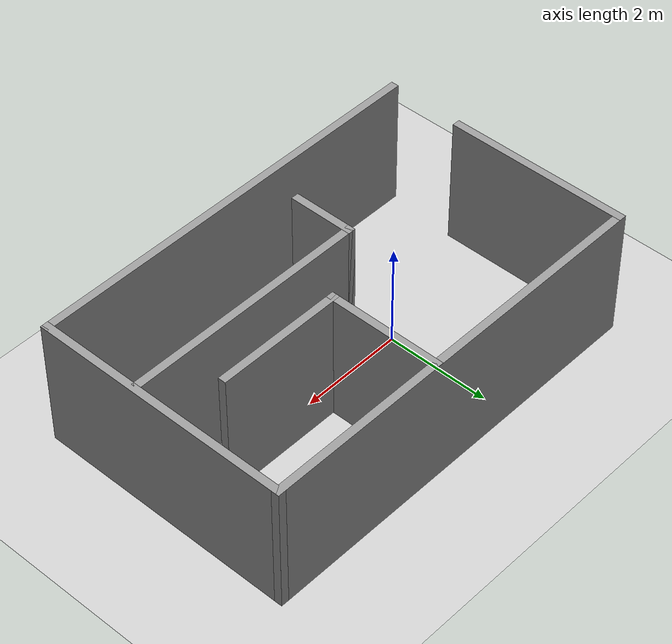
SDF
<sdf version="1.7">
 <world name="default">
  <light name="sun" type="directional">
   <pose>0 0 10 0 -0 0</pose>
   <diffuse>0.8 0.8 0.8 1</diffuse>
   <specular>0.2 0.2 0.2 1</specular>
   <attenuation>
    <range>1000</range>
    <constant>0.9</constant>
    <linear>0.01</linear>
    <quadratic>0.001</quadratic>
   </attenuation>
   <direction>-0.5 0.1 -0.9</direction>
   <spot><inner_angle>0</inner_angle><outer_angle>0</outer_angle><falloff>0</falloff></spot>
  </light>
  <model name="ground_plane">
   <static>1</static>
   <link name="link">
    <collision name="collision">
     <geometry><plane><normal>0 0 1</normal><size>100 100</size></plane></geometry>
     <surface><friction><ode><mu>100</mu><mu2>50</mu2></ode></friction></surface>
    </collision>
    <visual name="visual">
     <cast_shadows>0</cast_shadows>
     <geometry><plane><normal>0 0 1</normal><size>100 100</size></plane></geometry>
     <material>
      <script><uri>file://media/materials/scripts/gazebo.material</uri><name>Gazebo/Grey</name></script>
     </material>
    </visual>
   </link>
  </model>
  <gravity>0 0 -9.8</gravity>
  <magnetic_field>6e-06 2.3e-05 -4.2e-05</magnetic_field>
  <atmosphere type="adiabatic"/>
  <physics type="ode">
   <max_step_size>0.001</max_step_size>
   <real_time_factor>1</real_time_factor>
   <real_time_update_rate>1000</real_time_update_rate>
  </physics>
  <scene><ambient>0.4 0.4 0.4 1</ambient><background>0.7 0.7 0.7 1</background><shadows>1</shadows></scene>
  <audio><device>default</device></audio>
  <spherical_coordinates>
   <surface_model>EARTH_WGS84</surface_model>
   <latitude_deg>0</latitude_deg>
   <longitude_deg>0</longitude_deg>
   <elevation>0</elevation>
   <heading_deg>0</heading_deg>
  </spherical_coordinates>
  <model name="room">
   <pose>1.28006 0.013878 0 0 -0 0</pose>
   <link name="Wall_0">
    <collision name="Wall_0_Collision">
     <geometry><box><size>8 0.15 2.5</size></box></geometry>
     <pose>0 0 1.25 0 -0 0</pose>
    </collision>
    <visual name="Wall_0_Visual">
     <pose>0 0 1.25 0 -0 0</pose>
     <geometry><box><size>8 0.15 2.5</size></box></geometry>
     <material>
      <script><uri>file://media/materials/scripts/gazebo.material</uri><name>Gazebo/Grey</name></script>
      <ambient>1 1 1 1</ambient>
     </material>
     <meta><layer>0</layer></meta>
    </visual>
    <pose>0 -2.425 0 0 -0 0</pose>
   </link>
   <link name="Wall_1">
    <collision name="Wall_1_Collision">
     <geometry><box><size>5 0.15 2.5</size></box></geometry>
     <pose>0 0 1.25 0 -0 0</pose>
    </collision>
    <visual name="Wall_1_Visual">
     <pose>0 0 1.25 0 -0 0</pose>
     <geometry><box><size>5 0.15 2.5</size></box></geometry>
     <material>
      <script><uri>file://media/materials/scripts/gazebo.material</uri><name>Gazebo/Grey</name></script>
      <ambient>1 1 1 1</ambient>
     </material>
     <meta><layer>0</layer></meta>
    </visual>
    <pose>3.925 -0 0 0 -0 1.5708</pose>
   </link>
   <link name="Wall_10">
    <collision name="Wall_10_Collision">
     <geometry><box><size>1.25 0.15 2.5</size></box></geometry>
     <pose>0 0 1.25 0 -0 0</pose>
    </collision>
    <visual name="Wall_10_Visual">
     <pose>0 0 1.25 0 -0 0</pose>
     <geometry><box><size>1.25 0.15 2.5</size></box></geometry>
     <material>
      <script><uri>file://media/materials/scripts/gazebo.material</uri><name>Gazebo/Grey</name></script>
      <ambient>1 1 1 1</ambient>
     </material>
     <meta><layer>0</layer></meta>
    </visual>
    <pose>-0.773 -1.0875 0 0 -0 -1.5708</pose>
   </link>
   <link name="Wall_2">
    <collision name="Wall_2_Collision">
     <geometry><box><size>8 0.15 2.5</size></box></geometry>
     <pose>0 0 1.25 0 -0 0</pose>
    </collision>
    <visual name="Wall_2_Visual">
     <pose>0 0 1.25 0 -0 0</pose>
     <geometry><box><size>8 0.15 2.5</size></box></geometry>
     <material>
      <script><uri>file://media/materials/scripts/gazebo.material</uri><name>Gazebo/Grey</name></script>
      <ambient>1 1 1 1</ambient>
     </material>
     <meta><layer>0</layer></meta>
    </visual>
    <pose>0 2.425 0 0 -0 3.14159</pose>
   </link>
   <link name="Wall_3">
    <collision name="Wall_3_Collision">
     <geometry><box><size>3.5 0.15 2.5</size></box></geometry>
     <pose>0 0 1.25 0 -0 0</pose>
    </collision>
    <visual name="Wall_3_Visual">
     <pose>0 0 1.25 0 -0 0</pose>
     <geometry><box><size>3.5 0.15 2.5</size></box></geometry>
     <material>
      <script><uri>file://media/materials/scripts/gazebo.material</uri><name>Gazebo/Grey</name></script>
      <ambient>1 1 1 1</ambient>
     </material>
     <meta><layer>0</layer></meta>
    </visual>
    <pose>-3.925 0.75 0 0 -0 -1.5708</pose>
   </link>
   <link name="Wall_5">
    <collision name="Wall_5_Collision">
     <geometry><box><size>2.25 0.15 2.5</size></box></geometry>
     <pose>0 0 1.25 0 -0 0</pose>
    </collision>
    <visual name="Wall_5_Visual">
     <pose>0 0 1.25 0 -0 0</pose>
     <geometry><box><size>2.25 0.15 2.5</size></box></geometry>
     <material>
      <script><uri>file://media/materials/scripts/gazebo.material</uri><name>Gazebo/Grey</name></script>
      <ambient>1 1 1 1</ambient>
     </material>
     <meta><layer>0</layer></meta>
    </visual>
    <pose>0.515 1.368 0 0 -0 -1.5708</pose>
   </link>
   <link name="Wall_6">
    <collision name="Wall_6_Collision">
     <geometry><box><size>2.5 0.15 2.5</size></box></geometry>
     <pose>0 0 1.25 0 -0 0</pose>
    </collision>
    <visual name="Wall_6_Visual">
     <pose>0 0 1.25 0 -0 0</pose>
     <geometry><box><size>2.5 0.15 2.5</size></box></geometry>
     <material>
      <script><uri>file://media/materials/scripts/gazebo.material</uri><name>Gazebo/Grey</name></script>
      <ambient>1 1 1 1</ambient>
     </material>
     <meta><layer>0</layer></meta>
    </visual>
    <pose>1.69 0.318 0 0 -0 0</pose>
   </link>
   <link name="Wall_8">
    <collision name="Wall_8_Collision">
     <geometry><box><size>4.75 0.15 2.5</size></box></geometry>
     <pose>0 0 1.25 0 -0 0</pose>
    </collision>
    <visual name="Wall_8_Visual">
     <pose>0 0 1.25 0 -0 0</pose>
     <geometry><box><size>4.75 0.15 2.5</size></box></geometry>
     <material>
      <script><uri>file://media/materials/scripts/gazebo.material</uri><name>Gazebo/Grey</name></script>
      <ambient>1 1 1 1</ambient>
     </material>
     <meta><layer>0</layer></meta>
    </visual>
    <pose>1.527 -0.5375 0 0 -0 0</pose>
   </link>
   <static>1</static>
  </model>
 </world>
</sdf>
